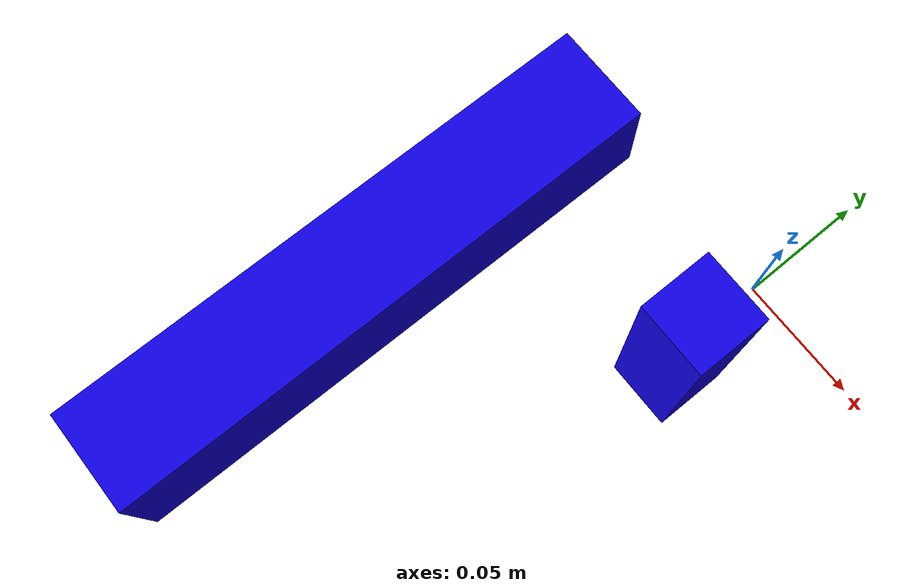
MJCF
<?xml version='1.0' encoding='utf-8'?>
<mujoco model="obj3">
  <asset>
    <mesh name="obj3" file="obj3.obj" scale="0.001 0.001 0.001" />
    <material name="mat3" rgba="0.06275 0 0.9098 1" />
    <mesh name="obj1_p0" file="obj3_part_0.obj" scale="0.001 0.001 0.001" />
  </asset>
  <worldbody>
    <body>
      <body name="object">
        <inertial pos="0 0 0" mass="0.1" diaginertia="0.0001 0.0001 0.0001" />
        <geom name="visual" mesh="obj3" type="mesh" group="1" contype="0" conaffinity="0" material="mat3" />
        <geom name="col_0" mesh="obj1_p0" type="mesh" group="0" contype="1" conaffinity="1" friction="0.95 0.3 0.1" solimp="0.9 0.95 0.001" solref="0.02 1" condim="4" material="mat3" />
      </body>
      <site name="bottom_site" pos="0 0 -0.025" size="0.005" rgba="0 0 0 0" />
      <site name="top_site" pos="0 0 0.025" size="0.005" rgba="0 0 0 0" />
      <site name="horizontal_radius_site" pos="0.03 0.03 0" size="0.005" rgba="0 0 0 0" />
    </body>
  </worldbody>
</mujoco>
